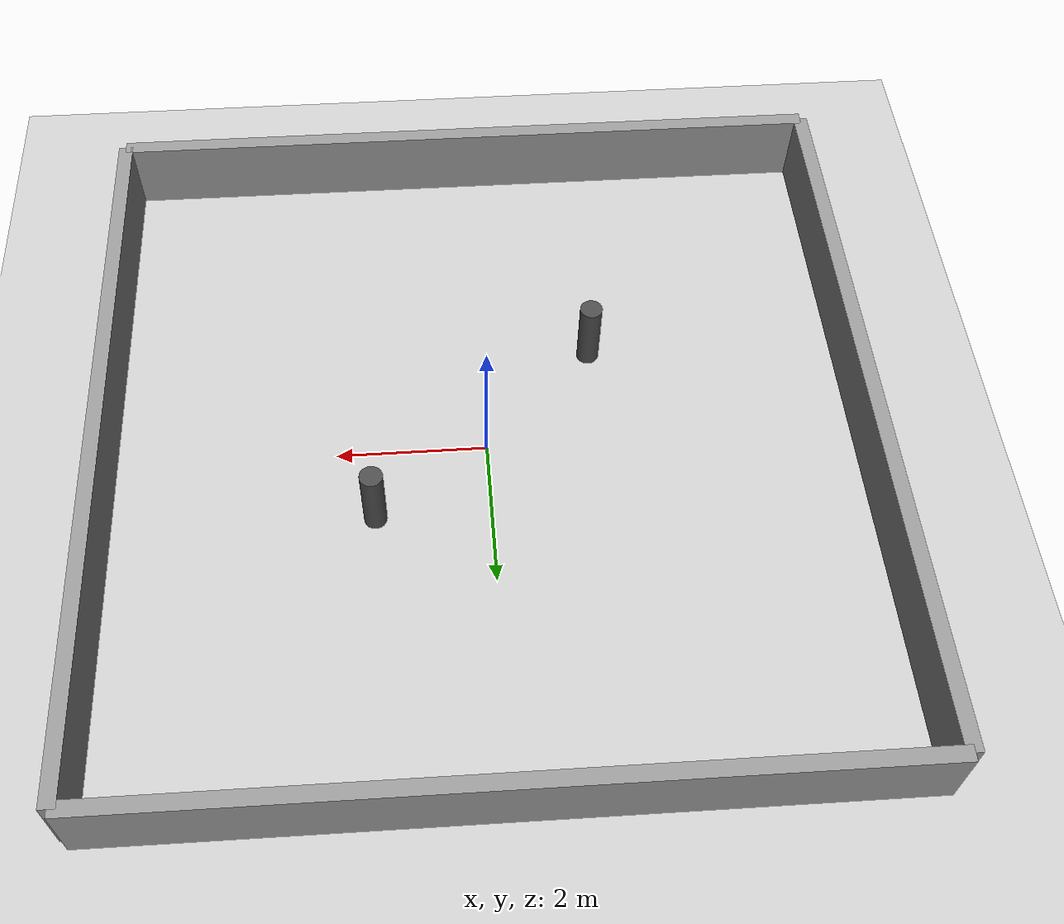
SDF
<?xml version="1.0"?>
<sdf version="1.6">
  <world name="p3dx_world">

    <!-- 地面 + 太阳 -->
    <include>
      <uri>model://ground_plane</uri>
    </include>
    <include>
      <uri>model://sun</uri>
    </include>

    <!-- 环境光 -->
    <light name="world_light" type="directional">
      <pose>0 0 10 0 0 0</pose>
      <diffuse>0.8 0.8 0.8 1</diffuse>
      <specular>0.2 0.2 0.2 1</specular>
      <direction>0 0 -1</direction>
    </light>

    <!-- 四面围墙（10m x 10m 场地，墙高 1m 厚 0.2m） -->
    <model name="wall_north">
      <static>true</static>
      <link name="link">
        <collision name="collision">
          <geometry><box><size>10 0.2 1</size></box></geometry>
        </collision>
        <visual name="visual">
          <geometry><box><size>10 0.2 1</size></box></geometry>
          <material><ambient>0.6 0.6 0.6 1</ambient></material>
        </visual>
      </link>
      <pose>0 5 0.5 0 0 0</pose>
    </model>

    <model name="wall_south">
      <static>true</static>
      <link name="link">
        <collision name="collision">
          <geometry><box><size>10 0.2 1</size></box></geometry>
        </collision>
        <visual name="visual">
          <geometry><box><size>10 0.2 1</size></box></geometry>
          <material><ambient>0.6 0.6 0.6 1</ambient></material>
        </visual>
      </link>
      <pose>0 -5 0.5 0 0 0</pose>
    </model>

    <model name="wall_east">
      <static>true</static>
      <link name="link">
        <collision name="collision">
          <geometry><box><size>0.2 10 1</size></box></geometry>
        </collision>
        <visual name="visual">
          <geometry><box><size>0.2 10 1</size></box></geometry>
          <material><ambient>0.6 0.6 0.6 1</ambient></material>
        </visual>
      </link>
      <pose>5 0 0.5 0 0 0</pose>
    </model>

    <model name="wall_west">
      <static>true</static>
      <link name="link">
        <collision name="collision">
          <geometry><box><size>0.2 10 1</size></box></geometry>
        </collision>
        <visual name="visual">
          <geometry><box><size>0.2 10 1</size></box></geometry>
          <material><ambient>0.6 0.6 0.6 1</ambient></material>
        </visual>
      </link>
      <pose>-5 0 0.5 0 0 0</pose>
    </model>

    <!-- 场内障碍物：两根圆柱 -->
    <model name="pillar_a">
      <static>true</static>
      <link name="link">
        <collision name="collision">
          <geometry><cylinder><radius>0.15</radius><length>1</length></cylinder></geometry>
        </collision>
        <visual name="visual">
          <geometry><cylinder><radius>0.15</radius><length>1</length></cylinder></geometry>
          <material><ambient>0.3 0.3 0.3 1</ambient></material>
        </visual>
      </link>
      <pose>1.5 1.0 0.5 0 0 0</pose>
    </model>

    <model name="pillar_b">
      <static>true</static>
      <link name="link">
        <collision name="collision">
          <geometry><cylinder><radius>0.15</radius><length>1</length></cylinder></geometry>
        </collision>
        <visual name="visual">
          <geometry><cylinder><radius>0.15</radius><length>1</length></cylinder></geometry>
          <material><ambient>0.3 0.3 0.3 1</ambient></material>
        </visual>
      </link>
      <pose>-1.5 -1.5 0.5 0 0 0</pose>
    </model>

  </world>
</sdf>
